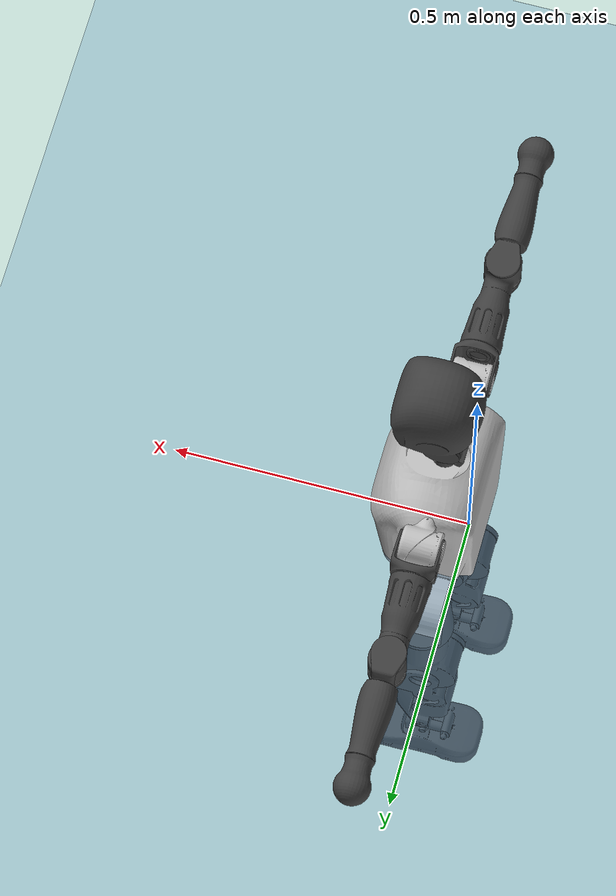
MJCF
<mujoco model="T1">
  <compiler angle="radian" assetdir="assets" balanceinertia="true" inertiafromgeom="false"/>

  <option timestep="0.005" density="1.2" viscosity="2e-05"/>

  <size nkey="1"/>

  <visual>
    <quality shadowsize="8192"/>
    <map shadowclip="0.5"/>
  </visual>

  <default>
    <default class="/">
      <joint armature="0.01" damping="0.01" frictionloss="0.1"/>
      <geom contype="0" conaffinity="0" group="1" solref="-1000 -80"/>
      <site size="0.01 0.005 0.005" group="5"/>
      <general forcelimited="true" biastype="affine" gainprm="25" biasprm="0 -25 -0.6"/>
      <default class="t1">
        <geom rgba="0.25 0.25 0.25 1"/>
        <default class="visual">
          <geom type="mesh" group="2"/>
        </default>
        <default class="collision">
          <geom group="3"/>
        </default>
        <default class="foot">
          <geom size="0.1115 0.05 0.015" type="box" condim="6" group="4" priority="1" solimp="0.015 1 0.015"/>
        </default>
        <default class="reward_collision_sphere">
          <geom group="5" rgba="1 0 0 1"/>
        </default>
      </default>
    </default>
  </default>

  <asset>
    <texture type="skybox" colorspace="auto" name="//unnamed_texture_0" builtin="gradient" rgb1="0.95 0.95 0.95" rgb2="0.95 0.95 0.95" width="100" height="600"/>
    <texture type="2d" colorspace="auto" name="texplane" builtin="checker" rgb1="0.345 0.575 0.748" rgb2="0.345 0.575 0.748" markrgb="1 1 1" width="512" height="512"/>
    <material name="MatPlane" class="/" texture="texplane" texuniform="true" texrepeat="2 2" specular="0.9"/>
    <mesh name="Trunk" class="/" file="Trunk.stl"/>
    <mesh name="H1" class="/" file="H1.stl"/>
    <mesh name="H2" class="/" file="H2.stl"/>
    <mesh name="AL1" class="/" file="AL1.stl"/>
    <mesh name="AL2" class="/" file="AL2.stl"/>
    <mesh name="AL3" class="/" file="AL3.stl"/>
    <mesh name="left_hand_link" class="/" file="left_hand_link.stl"/>
    <mesh name="AR1" class="/" file="AR1.stl"/>
    <mesh name="AR2" class="/" file="AR2.stl"/>
    <mesh name="AR3" class="/" file="AR3.stl"/>
    <mesh name="right_hand_link" class="/" file="right_hand_link.stl"/>
    <mesh name="Waist" class="/" file="Waist.stl"/>
    <mesh name="Hip_Pitch_Left" class="/" file="Hip_Pitch_Left.stl"/>
    <mesh name="Hip_Roll_Left" class="/" file="Hip_Roll_Left.stl"/>
    <mesh name="Hip_Yaw_Left" class="/" file="Hip_Yaw_Left.stl"/>
    <mesh name="Shank_Left" class="/" file="Shank_Left.stl"/>
    <mesh name="Ankle_Cross_Left" class="/" file="Ankle_Cross_Left.stl"/>
    <mesh name="left_foot_link" class="/" file="left_foot_link.stl"/>
    <mesh name="Hip_Pitch_Right" class="/" file="Hip_Pitch_Right.stl"/>
    <mesh name="Hip_Roll_Right" class="/" file="Hip_Roll_Right.stl"/>
    <mesh name="Hip_Yaw_Right" class="/" file="Hip_Yaw_Right.stl"/>
    <mesh name="Shank_Right" class="/" file="Shank_Right.stl"/>
    <mesh name="Ankle_Cross_Right" class="/" file="Ankle_Cross_Right.stl"/>
    <mesh name="right_foot_link" class="/" file="right_foot_link.stl"/>
  </asset>

  <worldbody>
    <geom name="floor" class="/" size="100 100 0.125" type="plane" group="0" material="MatPlane"/>
    <light name="toplight_shadow" class="/" pos="0 0 5" dir="0.0990148 0.0990148 -0.990148" type="directional" ambient="0.04 0.04 0.04" diffuse="0.55 0.55 0.55" specular="0.12 0.12 0.12"/>
    <light name="toplight_fill" class="/" pos="0 0 5" dir="0.0990148 0.0990148 -0.990148" type="directional" castshadow="false" ambient="0.04 0.04 0.04" diffuse="0.3 0.3 0.3" specular="0.08 0.08 0.08"/>
    <body name="trunk" childclass="t1" pos="0.000303256 0.000937408 -0.00250541" quat="0.999999 0.000411266 0.00113375 -0.000481074">
      <inertial pos="0.0396252 -0.000369834 0.116785" quat="0.999966 0.000212909 -0.00825499 0.00058731" mass="9.13282" diaginertia="0.0178713 0.063164 0.0903785"/>
      <joint name="//unnamed_joint_0" type="free" armature="0" damping="0" frictionloss="0"/>
      <geom name="//unnamed_geom_1" class="visual" rgba="0.76 0.76 0.76 1" mesh="Trunk"/>
      <geom name="//unnamed_geom_2" class="collision" size="0.0700341 0.0933788 0.140068" pos="0.0435168 0 0.133082" type="box"/>
      <geom name="//unnamed_geom_3" class="reward_collision_sphere" size="0.107386" pos="0.0435168 0 0.110902"/>
      <geom name="//unnamed_geom_4" class="reward_collision_sphere" size="0.0140068" pos="0.0435168 0.0822004 0"/>
      <geom name="//unnamed_geom_5" class="reward_collision_sphere" size="0.0140068" pos="0.0435168 -0.0822004 0"/>
      <geom name="//unnamed_geom_6" class="reward_collision_sphere" size="0.0140068" pos="0.0435168 0.103476 0.199624"/>
      <geom name="//unnamed_geom_7" class="reward_collision_sphere" size="0.0140068" pos="0.0435168 -0.103476 0.199624"/>
      <site name="imu" pos="-0.0123762 -0.000861495 0.00106641" size="0.00933788"/>
      <camera name="track" pos="0 -1.93413 0" quat="0.707107 0.707107 0 0" mode="trackcom"/>
      <camera name="ego_camera" pos="0.0884842 0 0.465788" quat="-0.5 -0.5 0.5 0.5"/>
      <body name="H1" pos="0.045382 -0.000303161 0.270364" quat="0.999999 0.000887037 0.000148413 -0.000872959">
        <inertial pos="0.000468484 -0.00178717 0.0626067" quat="0.76383 -0.013047 -0.000915437 0.645285" mass="0.36203" diaginertia="4.81517e-05 0.000192468 0.000245372"/>
        <joint name="AAHead_yaw" pos="0 0 0" axis="0.000744341 0.00239385 0.999997" range="-1.62322 1.59189" armature="0.00948063" damping="0.00835529" frictionloss="0.0901319"/>
        <geom name="//unnamed_geom_8" class="visual" mesh="H1"/>
        <body name="H2" pos="0.000709994 -0.00120438 0.0697448" quat="0.999999 -0.000552482 0.000827472 0.000863306">
          <inertial pos="0.00517944 0.000421747 0.109699" quat="0.9885 0.106232 -0.0742079 -0.0779467" mass="0.495174" diaginertia="0.000400014 0.00158838 0.002881"/>
          <joint name="Head_pitch" pos="0 0 0" axis="-0.0126004 -0.99992 0.00135123" range="-1.25267 0.400213" armature="0.0103935" damping="0.0185887" frictionloss="0.105347"/>
          <geom name="//unnamed_geom_9" class="visual" mesh="H2"/>
          <geom name="//unnamed_geom_10" class="collision" size="0.0747031" pos="0.00725281 0 0.121992"/>
          <geom name="//unnamed_geom_11" class="reward_collision_sphere" size="0.0840409" pos="0.0145056 0 0.110902"/>
        </body>
      </body>
      <body name="AL1" pos="0.045163 0.104462 0.24403" quat="1 2.73408e-05 0.000457856 1.38623e-05">
        <inertial pos="-0.00321688 0.0436949 -1.00024e-07" quat="0.500458 0.493361 -0.510544 0.495461" mass="0.42832" diaginertia="0.00026859 0.00112053 0.000485648"/>
        <joint name="Left_Shoulder_Pitch" pos="0 0 0" axis="6.09095e-05 1 -0.000141719" stiffness="0.00146461" range="-3.2999 1.22347" armature="0.00966143" damping="0.00984909" frictionloss="0.0959753"/>
        <geom name="//unnamed_geom_12" class="visual" rgba="0.76 0.76 0.76 1" mesh="AL1"/>
        <body name="AL2" pos="0.000754702 0.0463329 -0.00251498" quat="0.999999 0.000245685 -0.00114434 -0.000164891">
          <inertial pos="0.00356588 0.0362423 -0.00245049" quat="0.488248 0.513157 -0.486375 0.511588" mass="0.133042" diaginertia="8.14849e-05 0.000288979 0.000292229"/>
          <joint name="Left_Shoulder_Roll" pos="0 0 0" axis="-0.999925 0.00952539 0.0077112" stiffness="1.80185e-05" range="-1.57547 1.75996" armature="0.00911175" damping="0.00519235" frictionloss="0.0817174"/>
          <geom name="//unnamed_geom_13" class="visual" mesh="AL2"/>
          <body name="AL3" pos="-0.00182539 0.0582953 0.0014196" quat="1 -2.26916e-05 -2.4241e-05 2.19722e-05">
            <inertial pos="0.000629207 0.0824746 0.00203821" quat="0.706652 0.707561 0.000151547 9.33127e-05" mass="0.82246" diaginertia="0.00256583 0.0107426 0.0010369"/>
            <joint name="Left_Elbow_Pitch" pos="0 0 0" axis="-0.00501066 -0.999933 -0.0104245" range="-2.28709 2.26191" armature="0.00970666" damping="0.00890464" frictionloss="0.0910029"/>
            <geom name="//unnamed_geom_14" class="visual" mesh="AL3"/>
            <geom name="//unnamed_geom_15" class="collision" size="0.0280136 0.0700341" pos="0 0.0483532 0" quat="0.707105 0.707108 0 0" type="cylinder"/>
            <geom name="//unnamed_geom_16" class="reward_collision_sphere" size="0.0336164"/>
            <body name="left_hand_link" pos="-0.000584281 0.140188 0.00314006" quat="1 -0.000104521 0.000275904 -0.000287068">
              <inertial pos="-0.000141671 0.105814 0.00193837" quat="0.7063 0.707911 -0.000854554 -0.00082074" mass="0.276594" diaginertia="0.00163629 0.00719785 0.000371849"/>
              <joint name="Left_Elbow_Yaw" pos="0 0 0" axis="0.0140982 -0.00257399 0.999897" range="-2.46373 0.0135956" armature="0.0089306" damping="0.0140512" frictionloss="0.0973147"/>
              <geom name="//unnamed_geom_17" class="visual" mesh="left_hand_link"/>
              <geom name="//unnamed_geom_18" class="collision" size="0.0280136 0.0817065" pos="0 0.125718 0" quat="0.707105 0.707108 0 0" type="cylinder"/>
              <geom name="//unnamed_geom_19" class="reward_collision_sphere" size="0.0466894"/>
              <geom name="//unnamed_geom_20" class="reward_collision_sphere" size="0.0326826" pos="0 0.106377 0"/>
              <geom name="//unnamed_geom_21" class="reward_collision_sphere" size="0.0326826" pos="0 0.207919 0"/>
            </body>
          </body>
        </body>
      </body>
      <body name="AR1" pos="0.0430513 -0.102603 0.245082" quat="0.999999 0.000300953 0.00140297 0.000503557">
        <inertial pos="-0.00145966 -0.0435336 -0.00108634" quat="0.504651 0.495635 -0.504462 0.495168" mass="0.433296" diaginertia="0.000270552 0.00110061 0.000496708"/>
        <joint name="Right_Shoulder_Pitch" pos="0 0 0" axis="-0.00396653 -0.999992 -0.000786644" range="-1.22757 3.32792" armature="0.00958809" damping="0" frictionloss="0.0936794"/>
        <geom name="//unnamed_geom_22" class="visual" rgba="0.76 0.76 0.76 1" mesh="AR1"/>
        <body name="AR2" pos="-0.000127399 -0.0455089 -0.000952984" quat="1 0.000283377 0.000197624 -0.00040319">
          <inertial pos="0.00334373 -0.0364556 0.00168978" quat="0.512278 0.489118 -0.51115 0.486889" mass="0.12683" diaginertia="8.31873e-05 0.000294105 0.000288388"/>
          <joint name="Right_Shoulder_Roll" pos="0 0 0" axis="-0.999989 0.00217609 -0.00409842" range="-1.76082 1.56364" armature="0.00945943" damping="0.00551746" frictionloss="0.103696"/>
          <geom name="//unnamed_geom_23" class="visual" mesh="AR2"/>
          <body name="AR3" pos="-0.00158789 -0.056528 0.000456435" quat="1 -0.000329128 -0.000267328 0.000141115">
            <inertial pos="-0.00293587 -0.0822431 -0.000988415" quat="0.709121 0.705058 -0.00263807 0.00584042" mass="0.852901" diaginertia="0.00255054 0.0105351 0.00103833"/>
            <joint name="Right_Elbow_Pitch" pos="0 0 0" axis="-0.000257057 1 -0.000267557" range="-2.27932 2.26618" armature="0.00845202" damping="0.007129" frictionloss="0.092619"/>
            <geom name="//unnamed_geom_24" class="visual" mesh="AR3"/>
            <geom name="//unnamed_geom_25" class="collision" size="0.0280136 0.0700341" pos="0 -0.0483532 0" quat="0.707105 0.707108 0 0" type="cylinder"/>
            <geom name="//unnamed_geom_26" class="reward_collision_sphere" size="0.0336164"/>
            <body name="right_hand_link" pos="-0.000563578 -0.142255 0.00234348" quat="1 -2.98047e-05 -5.68778e-05 -2.51434e-05">
              <inertial pos="-0.00123892 -0.104197 0.00193272" quat="0.706319 0.707874 0.00321209 -0.00411696" mass="0.267143" diaginertia="0.00162515 0.00694764 0.000360622"/>
              <joint name="Right_Elbow_Yaw" pos="0 0 0" axis="0.00496015 -0.00463869 0.999977" range="-0.00678492 2.43648" armature="0.00969129" damping="0.0100856" frictionloss="0.0957188"/>
              <geom name="//unnamed_geom_27" class="visual" mesh="right_hand_link"/>
              <geom name="//unnamed_geom_28" class="collision" size="0.0280136 0.0817065" pos="0 -0.125718 0" quat="0.707105 0.707108 0 0" type="cylinder"/>
              <geom name="//unnamed_geom_29" class="reward_collision_sphere" size="0.0466894"/>
              <geom name="//unnamed_geom_30" class="reward_collision_sphere" size="0.0326826" pos="0 -0.106377 0"/>
              <geom name="//unnamed_geom_31" class="reward_collision_sphere" size="0.0326826" pos="0 -0.207919 0"/>
            </body>
          </body>
        </body>
      </body>
      <body name="Waist" pos="0.0466364 0.000409381 -0.127047" quat="1 1.20357e-06 -1.73102e-05 -7.98541e-05">
        <inertial pos="0.00224325 -3.31575e-05 0.00765596" quat="0.983557 0.00148284 -0.180563 0.0032373" mass="2.0785" diaginertia="0.00105583 0.00456608 0.00781104"/>
        <joint name="Waist" pos="0 0 0" axis="-0.002452 -0.00592527 0.999979" range="-1.5994 1.57259" armature="0.00920108" damping="0" frictionloss="0.0939536"/>
        <geom name="//unnamed_geom_32" class="visual" mesh="Waist"/>
        <body name="Hip_Pitch_Left" pos="6.3488e-05 0.104946 0.00225626" quat="1 0.00016973 -2.86104e-06 2.41199e-05">
          <inertial pos="5.22121e-05 -0.00722779 -0.0228326" quat="0.975664 0.21885 0.0133226 -0.00269207" mass="0.858316" diaginertia="0.00036687 0.00124565 0.00209002"/>
          <joint name="Left_Hip_Pitch" pos="0 0 0" axis="0.000178452 1 0.000578076" range="-1.76076 1.57533" armature="0.00937545" damping="0.000568927" frictionloss="0.083771"/>
          <geom name="//unnamed_geom_33" class="visual" rgba="0.76 0.76 0.76 1" mesh="Hip_Pitch_Left"/>
          <body name="Hip_Roll_Left" pos="0.000750662 -0.00140454 -0.0217831" quat="1 3.55343e-05 -0.000124074 -0.000122042">
            <inertial pos="-9.23782e-06 0.0007902 -0.0597026" quat="0.706816 -0.00442478 -0.00561609 0.707361" mass="0.317714" diaginertia="0.000359648 0.00131446 0.000882432"/>
            <joint name="Left_Hip_Roll" pos="0 0 0" axis="-0.999982 0.00572167 0.00205662" range="-1.54047 0.200888" armature="0.00935362" damping="0.0158721" frictionloss="0.0870937"/>
            <geom name="//unnamed_geom_34" class="visual" mesh="Hip_Roll_Left"/>
            <geom name="//unnamed_geom_35" class="reward_collision_sphere" size="0.0513583"/>
            <body name="Hip_Yaw_Left" pos="-0.000350002 -0.00120449 -0.0886925" quat="1 4.4399e-05 3.27321e-05 -1.49718e-05">
              <inertial pos="-0.00608157 0.000112304 -0.101582" quat="0.69648 -0.0378513 -0.0337138 0.715783" mass="1.74002" diaginertia="0.00533851 0.0211574 0.00433601"/>
              <joint name="Left_Hip_Yaw" pos="0 0 0" axis="-0.00300848 0.00446029 -0.999986" range="-1.00492 1.03887" armature="0.00866634" damping="0.0052389" frictionloss="0.0828051"/>
              <geom name="//unnamed_geom_36" class="visual" mesh="Hip_Yaw_Left"/>
              <geom name="//unnamed_geom_37" class="collision" size="0.0466894 0.0747031" type="cylinder"/>
              <body name="Shank_Left" pos="-0.00957038 0.00230732 -0.147149" quat="0.999999 0.000955253 6.8079e-05 0.000883802">
                <inertial pos="-0.00432338 -0.00217674 -0.137139" quat="0.998262 0.00436244 -0.0220064 0.0545029" mass="1.40731" diaginertia="0.00712414 0.02902 0.0031372"/>
                <joint name="Left_Knee_Pitch" pos="0 0 0" axis="-0.00347543 0.99998 -0.0052919" range="0.0198293 2.33893" armature="0.010003" damping="0.0157886" frictionloss="0.0823403"/>
                <geom name="//unnamed_geom_38" class="visual" mesh="Shank_Left"/>
                <geom name="//unnamed_geom_39" class="collision" size="0.0466894 0.0700341" pos="0 0 -0.133082" type="cylinder"/>
                <geom name="//unnamed_geom_40" class="reward_collision_sphere" size="0.0606962"/>
                <body name="Ankle_Cross_Left" pos="-0.00283446 0.000478433 -0.311217" quat="1 -0.000103601 -0.000256022 8.03725e-05">
                  <inertial pos="-0.00245318 -0.000240221 -0.00833804" quat="0.445592 0.546859 0.544916 0.453276" mass="0.0579831" diaginertia="5.82325e-06 2.14196e-05 1.8726e-05"/>
                  <joint name="Left_Ankle_Pitch" pos="0 0 0" axis="-0.00202825 0.999998 3.40909e-05" range="-0.879231 0.304571" armature="0.00920441" damping="0.00935546" frictionloss="0.0935961"/>
                  <geom name="//unnamed_geom_41" class="visual" mesh="Ankle_Cross_Left"/>
                  <body name="left_foot_link" pos="0.00102893 0.000421332 -0.0136758" quat="1 -0.000273713 0.000151674 0.00011246">
                    <inertial pos="-7.35854e-05 0.000331517 -0.00746292" quat="6.00732e-05 0.620819 0.000120567 0.783954" mass="0.557462" diaginertia="0.000537386 0.0020267 0.00369737"/>
                    <joint name="Left_Ankle_Roll" pos="0 0 0" axis="-0.999984 0.0049251 -0.00295621" range="-0.467911 0.433064" armature="0.00940504" damping="0.0220793" frictionloss="0.0939078"/>
                    <geom name="//unnamed_geom_42" class="visual" mesh="left_foot_link"/>
                    <geom name="left_foot" class="foot" size="0.111094 0.0515697 0.0143605" pos="0.00725281 0 -0.0166353"/>
                    <geom name="//unnamed_geom_44" class="reward_collision_sphere" size="0.048557" pos="0.00725281 0 -0.0166353"/>
                    <geom name="//unnamed_geom_45" class="reward_collision_sphere" size="0.0280136" pos="0.0689017 -0.0222425 -0.0166353"/>
                    <geom name="//unnamed_geom_46" class="reward_collision_sphere" size="0.0280136" pos="-0.0507696 -0.0222425 -0.0166353"/>
                    <site name="left_foot" class="foot" pos="0.00725281 0 -0.0166353" size="0.00933788"/>
                  </body>
                </body>
              </body>
            </body>
          </body>
        </body>
        <body name="Hip_Pitch_Right" pos="-0.00269913 -0.103951 0.00192587" quat="1 0.000751609 -0.000116477 0.000577172">
          <inertial pos="0.000919641 0.00477729 -0.0209797" quat="0.973452 -0.228298 0.0163111 -0.00225197" mass="0.819541" diaginertia="0.000357317 0.00121967 0.00207114"/>
          <joint name="Right_Hip_Pitch" pos="0 0 0" axis="-0.0009628 -0.999999 0.000328408" range="-1.55491 1.75466" armature="0.00925681" damping="0.0105794" frictionloss="0.105328"/>
          <geom name="//unnamed_geom_47" class="visual" rgba="0.76 0.76 0.76 1" mesh="Hip_Pitch_Right"/>
          <body name="Hip_Roll_Right" pos="-0.00282072 -0.00040156 -0.0205035" quat="1 -4.35441e-05 0.000136222 0.000437802">
            <inertial pos="0.00191893 2.33464e-06 -0.0596375" quat="0.7071 -0.00590311 -0.00602916 0.707063" mass="0.313265" diaginertia="0.000338515 0.00127112 0.000853505"/>
            <joint name="Right_Hip_Roll" pos="0 0 0" axis="-0.999982 -0.00577872 -0.00160922" stiffness="0.000858844" range="-0.181157 1.58359" armature="0.00934466" damping="0.0107697" frictionloss="0.102474"/>
            <geom name="//unnamed_geom_48" class="visual" mesh="Hip_Roll_Right"/>
            <geom name="//unnamed_geom_49" class="reward_collision_sphere" size="0.0513583"/>
            <body name="Hip_Yaw_Right" pos="0.00179227 -7.96956e-05 -0.0892287" quat="1 -0.000120025 -0.000347388 -0.00030006">
              <inertial pos="-0.00671567 0.00223622 -0.0997783" quat="0.714074 -0.0335686 -0.0346795 0.698405" mass="1.72747" diaginertia="0.00514678 0.0204804 0.00424653"/>
              <joint name="Right_Hip_Yaw" pos="0 0 0" axis="-2.37178e-06 -0.000214552 -1" stiffness="0.0041204" range="-1.01487 1.00582" armature="0.00918607" damping="0.0170933" frictionloss="0.0928183"/>
              <geom name="//unnamed_geom_50" class="visual" mesh="Hip_Yaw_Right"/>
              <geom name="//unnamed_geom_51" class="collision" size="0.0466894 0.0747031" type="cylinder"/>
              <body name="Shank_Right" pos="-0.00843837 -0.000941285 -0.146404" quat="1 -4.44885e-05 0.000205308 -5.04986e-05">
                <inertial pos="-0.00707401 -0.00132615 -0.137227" quat="0.998926 0.00843302 -0.0225489 -0.0395871" mass="1.43116" diaginertia="0.00690995 0.0291661 0.00321463"/>
                <joint name="Right_Knee_Pitch" pos="0 0 0" axis="0.000849058 -0.999999 -0.00125324" range="-2.34808 -0.0495248" armature="0.00933601" damping="0.00655081" frictionloss="0.0876325"/>
                <geom name="//unnamed_geom_52" class="visual" mesh="Shank_Right"/>
                <geom name="//unnamed_geom_53" class="collision" size="0.0466894 0.0700341" pos="0 0 -0.133082" type="cylinder"/>
                <geom name="//unnamed_geom_54" class="reward_collision_sphere" size="0.0606962"/>
                <body name="Ankle_Cross_Right" pos="0.000161845 -0.000521331 -0.313045" quat="1 0.000432023 -6.5079e-05 -0.00023402">
                  <inertial pos="-0.00341119 0.000134063 -0.00936745" quat="0.442357 0.551463 0.551967 0.4422" mass="0.0598719" diaginertia="5.87324e-06 2.2053e-05 1.93068e-05"/>
                  <joint name="Right_Ankle_Pitch" pos="0 0 0" axis="-0.00195406 -0.999994 0.00284295" stiffness="0.00031531" range="-0.298548 0.885374" armature="0.00970086" damping="0.00302306" frictionloss="0.0922095"/>
                  <geom name="//unnamed_geom_55" class="visual" mesh="Ankle_Cross_Right"/>
                  <body name="right_foot_link" pos="0.00174471 0.00018078 -0.01291" quat="1 0.000216014 -4.937e-05 -1.85445e-05">
                    <inertial pos="0.000202863 0.000614014 -0.00751249" quat="-0.00164168 0.62154 0.00139975 0.783379" mass="0.562216" diaginertia="0.000542479 0.00199408 0.00371638"/>
                    <joint name="Right_Ankle_Roll" pos="0 0 0" axis="-0.999999 0.000284842 0.00146134" range="-0.417182 0.448288" armature="0.00913497" damping="0.0106757" frictionloss="0.105531"/>
                    <geom name="//unnamed_geom_56" class="visual" mesh="right_foot_link"/>
                    <geom name="right_foot" class="foot" size="0.103346 0.0411652 0.0155259" pos="0.00725281 0 -0.0166353"/>
                    <geom name="//unnamed_geom_58" class="reward_collision_sphere" size="0.0373515"/>
                    <geom name="//unnamed_geom_59" class="reward_collision_sphere" size="0.0280136" pos="0.00725281 0 -0.0166353"/>
                    <geom name="//unnamed_geom_60" class="reward_collision_sphere" size="0.0280136" pos="0.0689017 0.0222425 -0.0166353"/>
                    <geom name="//unnamed_geom_61" class="reward_collision_sphere" size="0.0280136" pos="-0.0507696 0.0222425 -0.0166353"/>
                    <site name="right_foot" class="foot" pos="0.00725281 0 -0.0166353" size="0.00933788"/>
                  </body>
                </body>
              </body>
            </body>
          </body>
        </body>
      </body>
    </body>
  </worldbody>

  <contact>
    <pair class="/" geom1="floor" geom2="left_foot" name="//unnamed_contact_0"/>
    <pair class="/" geom1="floor" geom2="right_foot" name="//unnamed_contact_1"/>
  </contact>

  <actuator>
    <general name="AAHead_yaw" class="/" joint="AAHead_yaw" forcerange="-6.49982 6.49982" gainprm="24.32" biasprm="0 -24.32 -0.546072"/>
    <general name="Head_pitch" class="/" joint="Head_pitch" forcerange="-6.46993 6.46993" gainprm="24.32" biasprm="0 -24.32 -0.546072"/>
    <general name="Left_Shoulder_Pitch" class="/" joint="Left_Shoulder_Pitch" forcerange="-16.963 16.963" gainprm="24.32" biasprm="0 -24.32 -0.546072"/>
    <general name="Left_Shoulder_Roll" class="/" joint="Left_Shoulder_Roll" forcerange="-16.0845 16.0845" gainprm="24.32" biasprm="0 -24.32 -0.546072"/>
    <general name="Left_Elbow_Pitch" class="/" joint="Left_Elbow_Pitch" forcerange="-15.5546 15.5546" gainprm="24.32" biasprm="0 -24.32 -0.546072"/>
    <general name="Left_Elbow_Yaw" class="/" joint="Left_Elbow_Yaw" forcerange="-16.9757 16.9757" gainprm="24.32" biasprm="0 -24.32 -0.546072"/>
    <general name="Right_Shoulder_Pitch" class="/" joint="Right_Shoulder_Pitch" forcerange="-16.2715 16.2715" gainprm="24.32" biasprm="0 -24.32 -0.546072"/>
    <general name="Right_Shoulder_Roll" class="/" joint="Right_Shoulder_Roll" forcerange="-17.2153 17.2153" gainprm="24.32" biasprm="0 -24.32 -0.546072"/>
    <general name="Right_Elbow_Pitch" class="/" joint="Right_Elbow_Pitch" forcerange="-16.7388 16.7388" gainprm="24.32" biasprm="0 -24.32 -0.546072"/>
    <general name="Right_Elbow_Yaw" class="/" joint="Right_Elbow_Yaw" forcerange="-17.1508 17.1508" gainprm="24.32" biasprm="0 -24.32 -0.546072"/>
    <general name="Waist" class="/" joint="Waist" forcerange="-27.9895 27.9895" gainprm="24.32" biasprm="0 -24.32 -0.546072"/>
    <general name="Left_Hip_Pitch" class="/" joint="Left_Hip_Pitch" forcerange="-41.8962 41.8962" gainprm="24.32" biasprm="0 -24.32 -0.546072"/>
    <general name="Left_Hip_Roll" class="/" joint="Left_Hip_Roll" forcerange="-30.7102 30.7102" gainprm="24.32" biasprm="0 -24.32 -0.546072"/>
    <general name="Left_Hip_Yaw" class="/" joint="Left_Hip_Yaw" forcerange="-27.2585 27.2585" gainprm="24.32" biasprm="0 -24.32 -0.546072"/>
    <general name="Left_Knee_Pitch" class="/" joint="Left_Knee_Pitch" forcerange="-60.7817 60.7817" gainprm="24.32" biasprm="0 -24.32 -0.546072"/>
    <general name="Left_Ankle_Pitch" class="/" joint="Left_Ankle_Pitch" forcerange="-18.2341 18.2341" gainprm="24.32" biasprm="0 -24.32 -0.546072"/>
    <general name="Left_Ankle_Roll" class="/" joint="Left_Ankle_Roll" forcerange="-13.8554 13.8554" gainprm="24.32" biasprm="0 -24.32 -0.546072"/>
    <general name="Right_Hip_Pitch" class="/" joint="Right_Hip_Pitch" forcerange="-38.5173 38.5173" gainprm="24.32" biasprm="0 -24.32 -0.546072"/>
    <general name="Right_Hip_Roll" class="/" joint="Right_Hip_Roll" forcerange="-28.0612 28.0612" gainprm="24.32" biasprm="0 -24.32 -0.546072"/>
    <general name="Right_Hip_Yaw" class="/" joint="Right_Hip_Yaw" forcerange="-29.0334 29.0334" gainprm="24.32" biasprm="0 -24.32 -0.546072"/>
    <general name="Right_Knee_Pitch" class="/" joint="Right_Knee_Pitch" forcerange="-54.8058 54.8058" gainprm="24.32" biasprm="0 -24.32 -0.546072"/>
    <general name="Right_Ankle_Pitch" class="/" joint="Right_Ankle_Pitch" forcerange="-18.5883 18.5883" gainprm="24.32" biasprm="0 -24.32 -0.546072"/>
    <general name="Right_Ankle_Roll" class="/" joint="Right_Ankle_Roll" forcerange="-13.7411 13.7411" gainprm="24.32" biasprm="0 -24.32 -0.546072"/>
  </actuator>

  <sensor>
    <gyro site="imu" name="imu_angular_velocity"/>
    <velocimeter site="imu" name="imu_linear_velocity"/>
    <framelinvel objtype="site" objname="left_foot" name="left_foot_global_linear_velocity"/>
    <framelinvel objtype="site" objname="right_foot" name="right_foot_global_linear_velocity"/>
  </sensor>

  <keyframe>
    <key name="home" qpos="0 0 0.6385 1 0 0 0 0 0 0 1.4 0 -0.4 0 -1.4 0 0.4 0 -0.4 0 0 0.8 -0.4 0 0.4 0 0 -0.8 0.4 0"/>
  </keyframe>
</mujoco>
